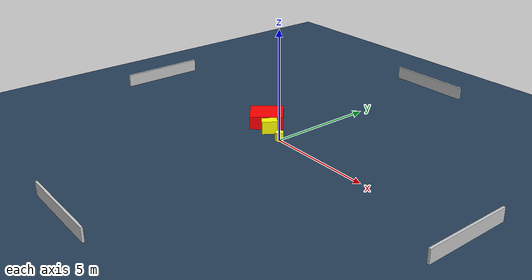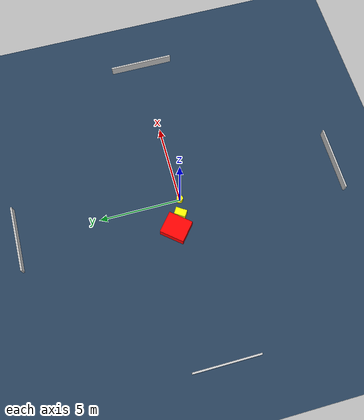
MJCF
<?xml version="1.0" ?>
<mujoco model="generated_environment">
  <option timestep="0.01" integrator="RK4" cone="elliptic"/>
  <default>
    <geom density="1"/>
  </default>
  <asset>
    <texture builtin="gradient" height="3072" name="skybox" rgb1="0.3 0.5 0.7" rgb2="0 0 0" type="skybox" width="512"/>
    <texture builtin="checker" height="300" name="groundplane" rgb1="0.2 0.3 0.4" rgb2="0.1 0.2 0.3" type="2d" width="300"/>
    <material name="groundplane" reflectance="0.2" texrepeat="5 5" texture="groundplane"/>
  </asset>
  <worldbody>
    <light dir="0 0 -1" directional="true" pos="0 0 1.5"/>
    <geom condim="3" friction="0.5 0.005 0.001" material="groundplane" name="floor" pos="0 0 0" size="0 0 0.05" type="plane"/>
    <body name="walls">
      <geom name="wall_1" condim="4" pos="-10.0 0.0 0.3" rgba="0.800000011920929 0.800000011920929 0.800000011920929 1.0" size="0.05 2.0 0.3" type="box"/>
      <geom name="wall_2" condim="4" pos="10.0 0.0 0.3" rgba="0.800000011920929 0.800000011920929 0.800000011920929 1.0" size="0.05 2.0 0.3" type="box"/>
      <geom name="wall_3" condim="4" pos="0.0 -10.0 0.3" rgba="0.800000011920929 0.800000011920929 0.800000011920929 1.0" size="2.0 0.05 0.3" type="box"/>
      <geom name="wall_4" condim="4" pos="0.0 10.0 0.3" rgba="0.800000011920929 0.800000011920929 0.800000011920929 1.0" size="2.0 0.05 0.3" type="box"/>
    </body>
    <body name="robot">
      <joint name="joint_x" type="slide" pos="0 0 0" axis="1 0 0"/>
      <joint name="joint_y" type="slide" pos="0 0 0" axis="0 1 0"/>
      <geom name="robot" type="cylinder" pos="0.0 0.0 0.2" size="0.2 0.2 0.0" mass="5.0" friction="1.0 0.005 0.0001" condim="4" rgba="1.0 1.0 0.0 1.0"/>
    </body>
    <body name="obstacle_1_movable">
      <geom name="obstacle_1_movable" condim="4" pos="-0.9289344653427596 0.19384414745409154 0.3" euler="0 0 145.737872304539" friction="0.0 0.005 0.001" rgba="1.0 1.0 0.0 1.0" size="0.2233107279700084 0.35189528320429275 0.3" type="box" mass="0.1"/>
      <joint type="free"/>
    </body>
    <body name="obstacle_2_static">
      <geom name="obstacle_2_static" condim="4" pos="-1.7572203706416079 0.6851340092081311 0.3" euler="0 0 140.2993660966838" friction="0.0 0.005 0.001" rgba="1.0 0.0 0.0 1.0" size="0.6743654719502554 0.7610558412468522 0.3" type="box"/>
    </body>
  </worldbody>
  <actuator>
    <motor name="actuator_x" joint="joint_x" gear="1" ctrlrange="-1 1"/>
    <motor name="actuator_y" joint="joint_y" gear="1" ctrlrange="-1 1"/>
  </actuator>
</mujoco>
